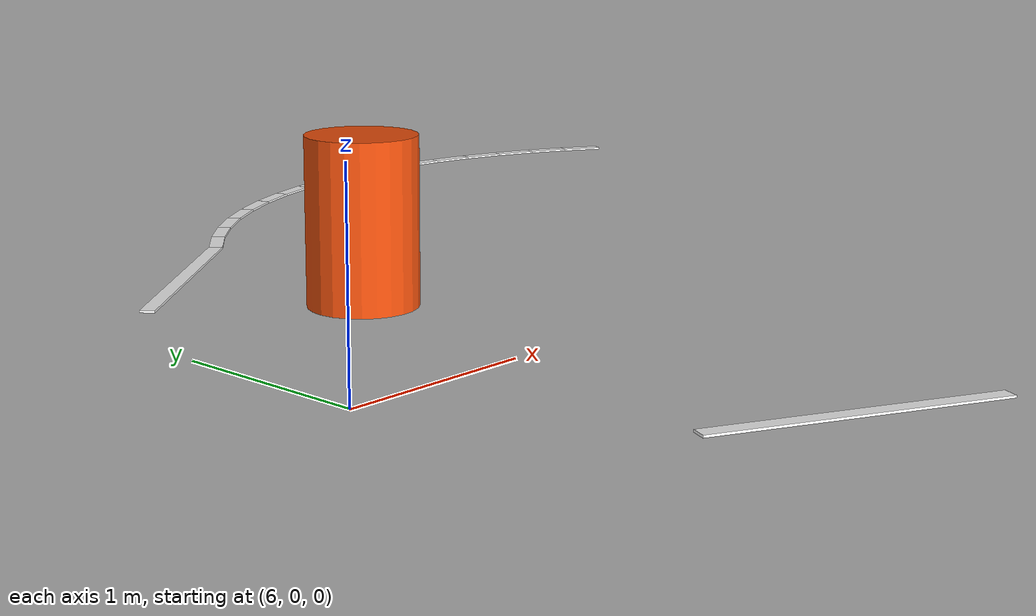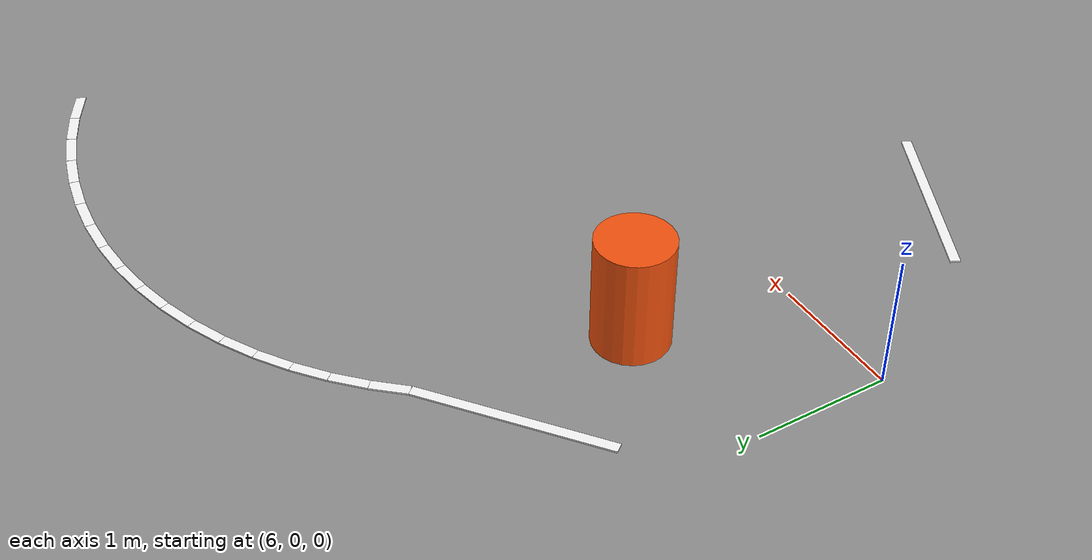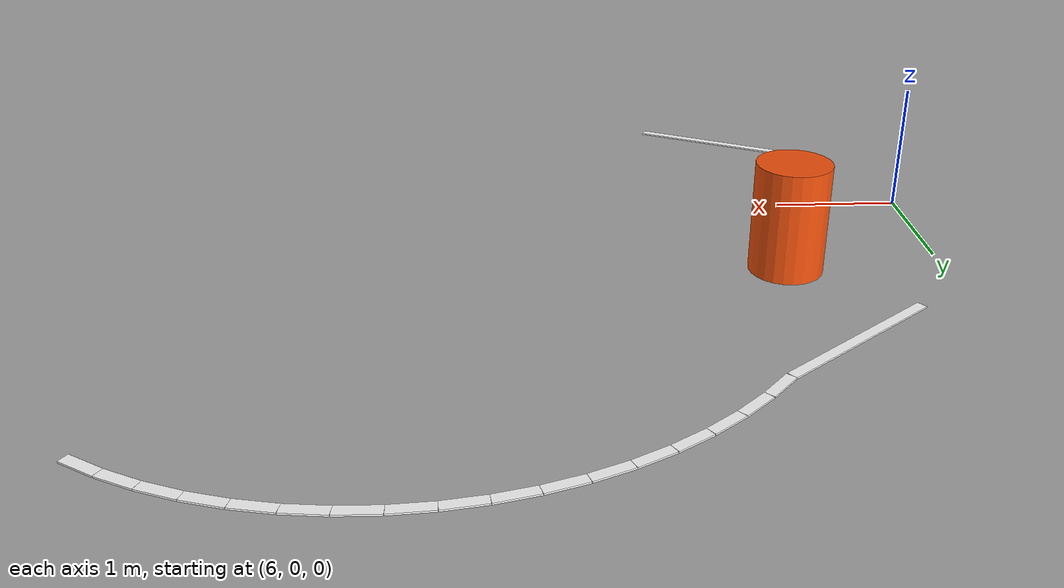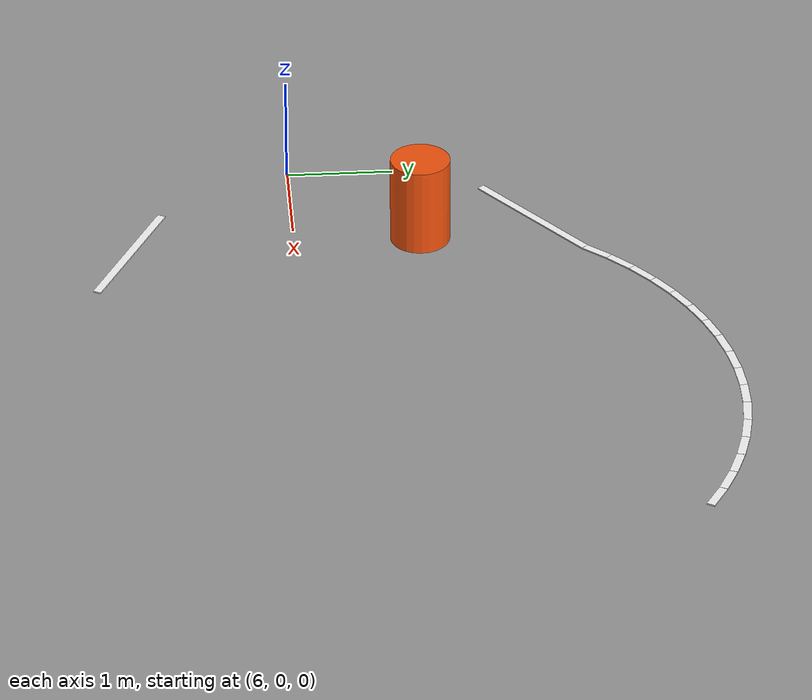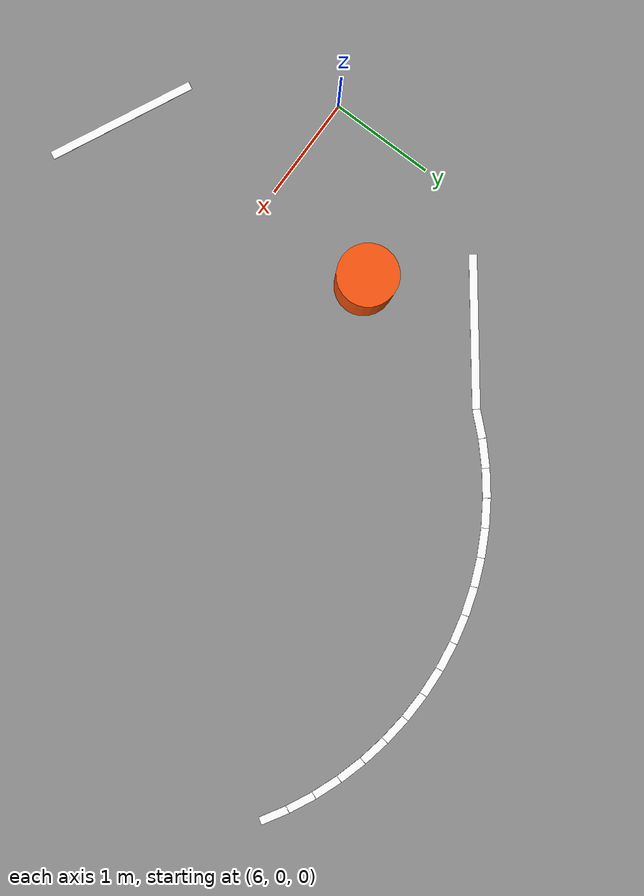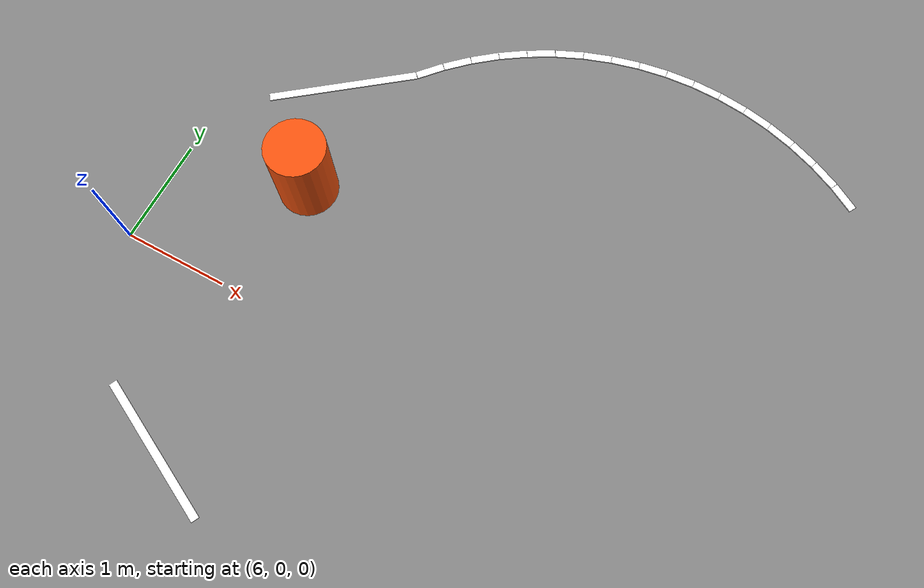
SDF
<sdf version="1.9">
 <world name="igvc_competition">
  <model name="left_boundary_1">
   <static>1</static>
   <pose>6.9313 2.2576 0.011 0 0 0.659843</pose>
   <link name="link">
    <visual name="visual">
     <geometry><box><size>1.4341 0.0762 0.012</size></box></geometry>
     <material>
      <ambient>0.98 0.98 0.98 1</ambient>
      <diffuse>0.98 0.98 0.98 1</diffuse>
      <specular>0.05 0.05 0.05 1</specular>
      <emissive>0.9 0.9 0.9 1</emissive>
     </material>
    </visual>
   </link>
  </model>
  <model name="right_boundary_1">
   <static>1</static>
   <pose>7.3104 -1.5335 0.011 0 0 -0.460506</pose>
   <link name="link">
    <visual name="visual">
     <geometry><box><size>1.4341 0.0762 0.012</size></box></geometry>
     <material>
      <ambient>0.98 0.98 0.98 1</ambient>
      <diffuse>0.98 0.98 0.98 1</diffuse>
      <specular>0.05 0.05 0.05 1</specular>
      <emissive>0.9 0.9 0.9 1</emissive>
     </material>
    </visual>
   </link>
  </model>
  <model name="left_boundary_join_2_0">
   <static>1</static>
   <pose>7.5902 2.8007 0.011 0 0 0.842157</pose>
   <link name="link">
    <visual name="visual">
     <geometry><box><size>0.2774 0.0762 0.012</size></box></geometry>
     <material>
      <ambient>0.98 0.98 0.98 1</ambient>
      <diffuse>0.98 0.98 0.98 1</diffuse>
      <specular>0.05 0.05 0.05 1</specular>
      <emissive>0.9 0.9 0.9 1</emissive>
     </material>
    </visual>
   </link>
  </model>
  <model name="left_boundary_join_2_1">
   <static>1</static>
   <pose>7.7834 2.9993 0.011 0 0 0.756338</pose>
   <link name="link">
    <visual name="visual">
     <geometry><box><size>0.2774 0.0762 0.012</size></box></geometry>
     <material>
      <ambient>0.98 0.98 0.98 1</ambient>
      <diffuse>0.98 0.98 0.98 1</diffuse>
      <specular>0.05 0.05 0.05 1</specular>
      <emissive>0.9 0.9 0.9 1</emissive>
     </material>
    </visual>
   </link>
  </model>
  <model name="left_boundary_join_2_2">
   <static>1</static>
   <pose>7.9930 3.1806 0.011 0 0 0.670519</pose>
   <link name="link">
    <visual name="visual">
     <geometry><box><size>0.2774 0.0762 0.012</size></box></geometry>
     <material>
      <ambient>0.98 0.98 0.98 1</ambient>
      <diffuse>0.98 0.98 0.98 1</diffuse>
      <specular>0.05 0.05 0.05 1</specular>
      <emissive>0.9 0.9 0.9 1</emissive>
     </material>
    </visual>
   </link>
  </model>
  <model name="left_boundary_join_2_3">
   <static>1</static>
   <pose>8.2173 3.3434 0.011 0 0 0.584699</pose>
   <link name="link">
    <visual name="visual">
     <geometry><box><size>0.2774 0.0762 0.012</size></box></geometry>
     <material>
      <ambient>0.98 0.98 0.98 1</ambient>
      <diffuse>0.98 0.98 0.98 1</diffuse>
      <specular>0.05 0.05 0.05 1</specular>
      <emissive>0.9 0.9 0.9 1</emissive>
     </material>
    </visual>
   </link>
  </model>
  <model name="left_boundary_join_2_4">
   <static>1</static>
   <pose>8.4547 3.4863 0.011 0 0 0.498880</pose>
   <link name="link">
    <visual name="visual">
     <geometry><box><size>0.2774 0.0762 0.012</size></box></geometry>
     <material>
      <ambient>0.98 0.98 0.98 1</ambient>
      <diffuse>0.98 0.98 0.98 1</diffuse>
      <specular>0.05 0.05 0.05 1</specular>
      <emissive>0.9 0.9 0.9 1</emissive>
     </material>
    </visual>
   </link>
  </model>
  <model name="left_boundary_join_2_5">
   <static>1</static>
   <pose>8.7035 3.6083 0.011 0 0 0.413061</pose>
   <link name="link">
    <visual name="visual">
     <geometry><box><size>0.2774 0.0762 0.012</size></box></geometry>
     <material>
      <ambient>0.98 0.98 0.98 1</ambient>
      <diffuse>0.98 0.98 0.98 1</diffuse>
      <specular>0.05 0.05 0.05 1</specular>
      <emissive>0.9 0.9 0.9 1</emissive>
     </material>
    </visual>
   </link>
  </model>
  <model name="left_boundary_join_2_6">
   <static>1</static>
   <pose>8.9618 3.7085 0.011 0 0 0.327242</pose>
   <link name="link">
    <visual name="visual">
     <geometry><box><size>0.2774 0.0762 0.012</size></box></geometry>
     <material>
      <ambient>0.98 0.98 0.98 1</ambient>
      <diffuse>0.98 0.98 0.98 1</diffuse>
      <specular>0.05 0.05 0.05 1</specular>
      <emissive>0.9 0.9 0.9 1</emissive>
     </material>
    </visual>
   </link>
  </model>
  <model name="left_boundary_join_2_7">
   <static>1</static>
   <pose>9.2278 3.7862 0.011 0 0 0.241422</pose>
   <link name="link">
    <visual name="visual">
     <geometry><box><size>0.2774 0.0762 0.012</size></box></geometry>
     <material>
      <ambient>0.98 0.98 0.98 1</ambient>
      <diffuse>0.98 0.98 0.98 1</diffuse>
      <specular>0.05 0.05 0.05 1</specular>
      <emissive>0.9 0.9 0.9 1</emissive>
     </material>
    </visual>
   </link>
  </model>
  <model name="left_boundary_join_2_8">
   <static>1</static>
   <pose>9.4994 3.8409 0.011 0 0 0.155603</pose>
   <link name="link">
    <visual name="visual">
     <geometry><box><size>0.2774 0.0762 0.012</size></box></geometry>
     <material>
      <ambient>0.98 0.98 0.98 1</ambient>
      <diffuse>0.98 0.98 0.98 1</diffuse>
      <specular>0.05 0.05 0.05 1</specular>
      <emissive>0.9 0.9 0.9 1</emissive>
     </material>
    </visual>
   </link>
  </model>
  <model name="left_boundary_join_2_9">
   <static>1</static>
   <pose>9.7748 3.8721 0.011 0 0 0.069784</pose>
   <link name="link">
    <visual name="visual">
     <geometry><box><size>0.2774 0.0762 0.012</size></box></geometry>
     <material>
      <ambient>0.98 0.98 0.98 1</ambient>
      <diffuse>0.98 0.98 0.98 1</diffuse>
      <specular>0.05 0.05 0.05 1</specular>
      <emissive>0.9 0.9 0.9 1</emissive>
     </material>
    </visual>
   </link>
  </model>
  <model name="left_boundary_join_2_10">
   <static>1</static>
   <pose>10.0518 3.8795 0.011 0 0 -0.016036</pose>
   <link name="link">
    <visual name="visual">
     <geometry><box><size>0.2774 0.0762 0.012</size></box></geometry>
     <material>
      <ambient>0.98 0.98 0.98 1</ambient>
      <diffuse>0.98 0.98 0.98 1</diffuse>
      <specular>0.05 0.05 0.05 1</specular>
      <emissive>0.9 0.9 0.9 1</emissive>
     </material>
    </visual>
   </link>
  </model>
  <model name="left_boundary_join_2_11">
   <static>1</static>
   <pose>10.3284 3.8632 0.011 0 0 -0.101855</pose>
   <link name="link">
    <visual name="visual">
     <geometry><box><size>0.2774 0.0762 0.012</size></box></geometry>
     <material>
      <ambient>0.98 0.98 0.98 1</ambient>
      <diffuse>0.98 0.98 0.98 1</diffuse>
      <specular>0.05 0.05 0.05 1</specular>
      <emissive>0.9 0.9 0.9 1</emissive>
     </material>
    </visual>
   </link>
  </model>
  <model name="left_boundary_join_2_12">
   <static>1</static>
   <pose>10.6026 3.8232 0.011 0 0 -0.187674</pose>
   <link name="link">
    <visual name="visual">
     <geometry><box><size>0.2774 0.0762 0.012</size></box></geometry>
     <material>
      <ambient>0.98 0.98 0.98 1</ambient>
      <diffuse>0.98 0.98 0.98 1</diffuse>
      <specular>0.05 0.05 0.05 1</specular>
      <emissive>0.9 0.9 0.9 1</emissive>
     </material>
    </visual>
   </link>
  </model>
  <model name="left_boundary_join_2_13">
   <static>1</static>
   <pose>10.8724 3.7599 0.011 0 0 -0.273493</pose>
   <link name="link">
    <visual name="visual">
     <geometry><box><size>0.2774 0.0762 0.012</size></box></geometry>
     <material>
      <ambient>0.98 0.98 0.98 1</ambient>
      <diffuse>0.98 0.98 0.98 1</diffuse>
      <specular>0.05 0.05 0.05 1</specular>
      <emissive>0.9 0.9 0.9 1</emissive>
     </material>
    </visual>
   </link>
  </model>
  <model name="left_boundary_join_2_14">
   <static>1</static>
   <pose>11.1357 3.6736 0.011 0 0 -0.359313</pose>
   <link name="link">
    <visual name="visual">
     <geometry><box><size>0.2774 0.0762 0.012</size></box></geometry>
     <material>
      <ambient>0.98 0.98 0.98 1</ambient>
      <diffuse>0.98 0.98 0.98 1</diffuse>
      <specular>0.05 0.05 0.05 1</specular>
      <emissive>0.9 0.9 0.9 1</emissive>
     </material>
    </visual>
   </link>
  </model>
  <model name="left_boundary_join_2_15">
   <static>1</static>
   <pose>11.3907 3.5652 0.011 0 0 -0.445132</pose>
   <link name="link">
    <visual name="visual">
     <geometry><box><size>0.2774 0.0762 0.012</size></box></geometry>
     <material>
      <ambient>0.98 0.98 0.98 1</ambient>
      <diffuse>0.98 0.98 0.98 1</diffuse>
      <specular>0.05 0.05 0.05 1</specular>
      <emissive>0.9 0.9 0.9 1</emissive>
     </material>
    </visual>
   </link>
  </model>
  <model name="left_boundary_join_2_16">
   <static>1</static>
   <pose>11.6355 3.4352 0.011 0 0 -0.530951</pose>
   <link name="link">
    <visual name="visual">
     <geometry><box><size>0.2774 0.0762 0.012</size></box></geometry>
     <material>
      <ambient>0.98 0.98 0.98 1</ambient>
      <diffuse>0.98 0.98 0.98 1</diffuse>
      <specular>0.05 0.05 0.05 1</specular>
      <emissive>0.9 0.9 0.9 1</emissive>
     </material>
    </visual>
   </link>
  </model>
  <model name="left_edge_barrel">
   <static>1</static>
   <pose>7.2000 1.1800 0 0 0 0</pose>
   <link name="link">
    <collision name="collision">
     <pose>0 0 0.4250 0 0 0</pose>
     <geometry><cylinder><radius>0.2800</radius><length>0.8500</length></cylinder></geometry>
    </collision>
    <visual name="visual">
     <pose>0 0 0.4250 0 0 0</pose>
     <geometry><cylinder><radius>0.2800</radius><length>0.8500</length></cylinder></geometry>
     <material>
      <ambient>0.95 0.32 0.05 1.0</ambient>
      <diffuse>0.95 0.32 0.05 1.0</diffuse>
      <specular>0.05 0.05 0.05 1</specular>
     </material>
    </visual>
   </link>
  </model>
 </world>
</sdf>
